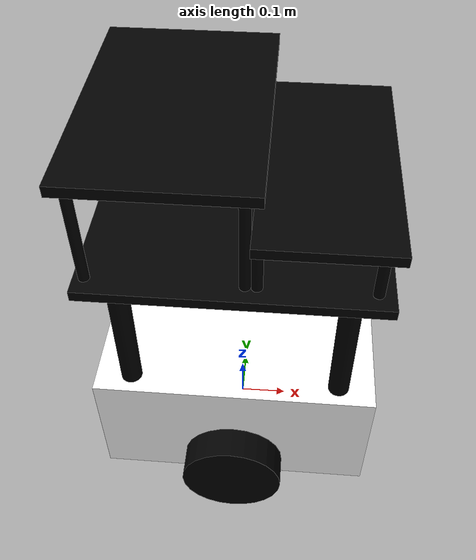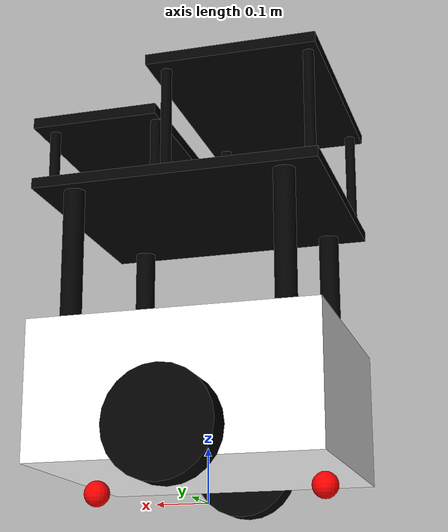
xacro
<?xml version="1.0"?>
<robot name="xiaoqiang" xmlns:xacro="http://wiki.ros.org/xacro">

    <xacro:property name="lidar_x" value="0.20"/>
    <xacro:property name="base_footprint_radius" value="0.001" />
    <xacro:property name="earth_space" value="0.05" /> <!-- 离地间距 -->
    <xacro:property name="base_size_x" value="0.54"/>
    <xacro:property name="base_size_y" value="0.48"/>
    <xacro:property name="base_size_z" value="0.26"/>
    <xacro:property name="base_mass" value="40.0"/>
    <xacro:property name="wheel_mass" value="10.0"/>
    <xacro:property name="wheel_radius" value="0.1"/>
    <xacro:property name="wheel_length" value="0.06"/>
    <!-- 定义底盘 -->
    <link name="base_footprint">
      <visual>
        <geometry>
          <sphere radius="${base_footprint_radius}" />
        </geometry>
      </visual>
    </link>
    <!-- 定义车底座 -->
    <link name="base_link">
        <!-- 外观 -->
        <visual>
            <origin xyz="0 0 0" rpy="0 0 0" />
            <geometry>
                <box size="${base_size_x} ${base_size_y} ${base_size_z}"/>
            </geometry>
            <material name="white">
                <color rgba="1 1 1 1"/>
            </material>
        </visual>
        <!-- 碰撞属性 -->
        <collision>
            <origin xyz="0 0 0" rpy="0 0 0" />
            <geometry>
                <box size="${base_size_x} ${base_size_y} ${base_size_z}"/>
            </geometry>
        </collision>
        <!-- 惯性属性 -->
        <inertial>
            <mass value="${base_mass}"/>
            <origin xyz="${base_size_x/2} 0 0" rpy="0 0 0"/>
            <inertia ixx="${base_mass*(base_size_z*base_size_z + base_size_x*base_size_x)/12}" ixy = "0" ixz = "0"
                     iyy="${base_mass*(base_size_y*base_size_y + base_size_x*base_size_x)/12}" iyz= "0"
                     izz="${base_mass*(base_size_y*base_size_y + base_size_z*base_size_z)/12}" />
        </inertial>
    </link>

    <joint name="base_to_foot_joint" type="fixed">
      <parent link="base_footprint" />
      <child link="base_link" />
      <origin xyz="0 0 ${earth_space + base_size_z / 2 }" />
    </joint>

    <link name="left_wheel_link">
        <visual>
            <origin xyz="0 0 0" rpy="-1.5707963 0 0" />
            <geometry>
                <cylinder radius="${wheel_radius}" length="${wheel_length}"/>
            </geometry>
            <material name="Black">
                <color rgba="0 0 0 1"/>
            </material>
        </visual>
        <collision>
            <origin xyz="0 0 0" rpy="-1.5707963 0 0" />
            <geometry>
                <cylinder radius="${wheel_radius}" length="${wheel_length}"/>
            </geometry>
        </collision>
        <inertial>
            <mass value="${wheel_mass}"/>
            <origin xyz="0 0 0" rpy="-1.5707963 0 0"/>
            <inertia ixx="${wheel_mass*(3*wheel_radius*wheel_radius+wheel_length*wheel_length)/12}" ixy = "0" ixz = "0"
                iyy="${wheel_mass*(3*wheel_radius*wheel_radius+wheel_length*wheel_length)/12}" iyz = "0"
                izz="${wheel_mass*wheel_radius*wheel_radius/2}" />
        </inertial>
    </link>

    <!-- 左后轮驱动 -->
    <joint name="rot1" type="continuous">
        <origin xyz="0 ${base_size_y/2 + wheel_length/2} ${ -1 * base_size_z /2 + wheel_radius/2}" rpy="0 0 0"/>
        <parent link="base_link"/>
        <child link="left_wheel_link"/>
        <axis xyz="0 1 0"/>
    </joint>

    <link name="right_wheel_link">
        <visual>
            <origin xyz="0 0 0" rpy="1.5707963 0 0" />
            <geometry>
                <cylinder radius="${wheel_radius}" length="${wheel_length}"/>
            </geometry>
            <material name="Black">
                <color rgba="0 0 0 1"/>
            </material>
        </visual>
        <collision>
            <origin xyz="0 0 0" rpy="1.5707963 0 0" />
            <geometry>
                <cylinder radius="${wheel_radius}" length="${wheel_length}"/>
            </geometry>
        </collision>
        <inertial>
            <mass value="${wheel_mass}"/>
            <origin xyz="0 0 0" rpy="1.5707963 0 0" />
            <inertia ixx="${wheel_mass*(3*wheel_radius*wheel_radius+wheel_length*wheel_length)/12}" ixy = "0" ixz = "0"
                iyy="${wheel_mass*(3*wheel_radius*wheel_radius+wheel_length*wheel_length)/12}" iyz = "0"
                izz="${wheel_mass*wheel_radius*wheel_radius/2}" />
        </inertial>
    </link>

    <!-- 右后轮驱动 -->
    <joint name="rot2" type="continuous">
        <origin xyz="0 ${-1*(base_size_y/2 + wheel_length/2)} ${ -1 * base_size_z /2 + wheel_radius/2}" rpy="0 0 0"/>
        <parent link="base_link"/>
        <child link="right_wheel_link"/>
        <axis xyz="0 1 0"/>
    </joint>

  <xacro:property name="support_wheel_radius" value="0.025" />
  <xacro:property name="support_wheel_mass" value="10.0" />
  <xacro:property name="support_wheel_x" value="0.22" />
  <link name="front_support_wheel">
    <visual>
        <origin xyz="0 0 0" rpy="0 0 0" />
        <geometry>
            <sphere radius="${support_wheel_radius}" />
        </geometry>
        <material name="Red">
            <color rgba="1 0 0 1"/>
        </material>
    </visual>
    <collision>
        <origin xyz="0 0 0" rpy="0 0 0" />
        <geometry>
            <sphere radius="${support_wheel_radius}" />
        </geometry>
    </collision>
    <inertial>
        <mass value="${support_wheel_mass}"/>
        <origin xyz="0 0 0" rpy="0 0 0" />
        <inertia ixx="${2*support_wheel_mass*support_wheel_radius*support_wheel_radius/5}" ixy="0" ixz="0"
            iyy="${2*support_wheel_mass*support_wheel_radius*support_wheel_radius/5}" iyz="0"
            izz="${2*support_wheel_mass*support_wheel_radius*support_wheel_radius/5}" />
    </inertial>
  </link>
  <joint name="rot3" type="continuous">
    <origin xyz="${support_wheel_x} 0 ${-1 * (base_size_z /2 + support_wheel_radius)}" rpy="0 0 0" />
    <parent link="base_link" />
    <child link="front_support_wheel" />
    <axis xyz="1 1 1" />
  </joint>

  <link name="back_support_wheel">
    <visual>
        <origin xyz="0 0 0" rpy="0 0 0" />
        <geometry>
            <sphere radius="${support_wheel_radius}" />
        </geometry>
        <material name="Red">
            <color rgba="1 0 0 1"/>
        </material>
    </visual>
    <collision>
        <origin xyz="0 0 0" rpy="0 0 0" />
        <geometry>
            <sphere radius="${support_wheel_radius}" />
        </geometry>
    </collision>
    <inertial>
        <mass value="${support_wheel_mass}"/>
        <origin xyz="0 0 0" rpy="0 0 0" />
        <inertia ixx="${2*support_wheel_mass*support_wheel_radius*support_wheel_radius/5}" ixy="0" ixz="0"
            iyy="${2*support_wheel_mass*support_wheel_radius*support_wheel_radius/5}" iyz="0"
            izz="${2*support_wheel_mass*support_wheel_radius*support_wheel_radius/5}" />
    </inertial>
  </link>
  <joint name="rot4" type="continuous">
    <origin xyz="${-support_wheel_x} 0 ${-1 * (base_size_z /2 + support_wheel_radius)}" rpy="0 0 0" />
    <parent link="base_link" />
    <child link="back_support_wheel" />
    <axis xyz="1 1 1" />
  </joint>

  <xacro:property name="column_radius" value="0.02"/>
  <xacro:property name="column_length" value="0.25"/>
  <xacro:property name="column_mass" value="3.0"/>
  <xacro:property name="column_x" value="0.20"/>
  <xacro:property name="column_y" value="0.05"/>
  <link name="column_one">
      <visual>
          <geometry>
              <cylinder radius="${column_radius}" length="${column_length}" />
          </geometry>
          <origin xyz="0 0 0" rpy="0 0 0" />
          <material name="black">
              <color rgba="0 0 0 1.0" />
          </material>
      </visual>
      <collision>
          <geometry>
              <cylinder radius="${column_radius}" length="${column_length}" />
          </geometry>
          <origin xyz="0.0 0.0 0.0" rpy="0 0.0 0.0" />
      </collision>
      <inertial>
          <origin xyz="0 0 0" />
          <mass value="${column_mass}" />
          <inertia ixx="${column_mass*(3*column_radius*column_radius+column_length*column_length)/12}" ixy = "0" ixz = "0"
              iyy="${column_mass*(3*column_radius*column_radius+column_length*column_length)/12}" iyz = "0"
              izz="${column_mass*column_radius*column_radius/2}" />
      </inertial>
  </link>

  <joint name="column_one_joint" type="fixed">
    <parent link="base_link"/>
    <child link="column_one"/>
    <origin rpy="0 0 0" xyz="${column_x} ${base_size_y/2 + column_radius/2 - column_y} ${column_length / 2 + base_size_z / 2} "/>
  </joint>

  <link name="column_two">
      <visual>
          <geometry>
              <cylinder radius="${column_radius}" length="${column_length}" />
          </geometry>
          <origin xyz="0 0 0" rpy="0 0 0" />
          <material name="black">
              <color rgba="0 0 0 1.0" />
          </material>
      </visual>
      <collision>
          <geometry>
              <cylinder radius="${column_radius}" length="${column_length}" />
          </geometry>
          <origin xyz="0.0 0.0 0.0" rpy="0 0.0 0.0" />
      </collision>
      <inertial>
          <origin xyz="0 0 0" />
          <mass value="${column_mass}" />
          <inertia ixx="${column_mass*(3*column_radius*column_radius+column_length*column_length)/12}" ixy = "0" ixz = "0"
              iyy="${column_mass*(3*column_radius*column_radius+column_length*column_length)/12}" iyz = "0"
              izz="${column_mass*column_radius*column_radius/2}" />
      </inertial>
  </link>

  <joint name="column_two_joint" type="fixed">
    <parent link="base_link"/>
    <child link="column_two"/>
    <origin rpy="0 0 0" xyz="${column_x} ${-1 *base_size_y/2 - column_radius/2 + column_y} ${column_length / 2 + base_size_z / 2} "/>
  </joint>

  <link name="column_three">
      <visual>
          <geometry>
              <cylinder radius="${column_radius}" length="${column_length}" />
          </geometry>
          <origin xyz="0 0 0" rpy="0 0 0" />
          <material name="black">
              <color rgba="0 0 0 1.0" />
          </material>
      </visual>
      <collision>
          <geometry>
              <cylinder radius="${column_radius}" length="${column_length}" />
          </geometry>
          <origin xyz="0.0 0.0 0.0" rpy="0 0.0 0.0" />
      </collision>
      <inertial>
          <origin xyz="0 0 0" />
          <mass value="${column_mass}" />
          <inertia ixx="${column_mass*(3*column_radius*column_radius+column_length*column_length)/12}" ixy = "0" ixz = "0"
              iyy="${column_mass*(3*column_radius*column_radius+column_length*column_length)/12}" iyz = "0"
              izz="${column_mass*column_radius*column_radius/2}" />
      </inertial>
  </link>

  <joint name="column_three_joint" type="fixed">
    <parent link="base_link"/>
    <child link="column_three"/>
    <origin rpy="0 0 0" xyz="${-1 *column_x} ${-1 *base_size_y/2 - column_radius/2 + column_y} ${column_length / 2 + base_size_z / 2} "/>
  </joint>

  <link name="column_four">
      <visual>
          <geometry>
              <cylinder radius="${column_radius}" length="${column_length}" />
          </geometry>
          <origin xyz="0 0 0" rpy="0 0 0" />
          <material name="black">
              <color rgba="0 0 0 1.0" />
          </material>
      </visual>
      <collision>
          <geometry>
              <cylinder radius="${column_radius}" length="${column_length}" />
          </geometry>
          <origin xyz="0.0 0.0 0.0" rpy="0 0.0 0.0" />
      </collision>
      <inertial>
          <origin xyz="0 0 0" />
          <mass value="${column_mass}" />
          <inertia ixx="${column_mass*(3*column_radius*column_radius+column_length*column_length)/12}" ixy = "0" ixz = "0"
              iyy="${column_mass*(3*column_radius*column_radius+column_length*column_length)/12}" iyz = "0"
              izz="${column_mass*column_radius*column_radius/2}" />
      </inertial>
  </link>

  <joint name="column_four_joint" type="fixed">
    <parent link="base_link"/>
    <child link="column_four"/>
    <origin rpy="0 0 0" xyz="${-1 *column_x} ${base_size_y/2 + column_radius/2 - column_y} ${column_length / 2 + base_size_z / 2} "/>
  </joint>

  <xacro:property name="base_size_two_z" value="0.02"/>
  <xacro:property name="base_1_mass" value="2.0"/>
      <!-- 定义车二层 -->
  <link name="two_ply_link">
      <!-- 外观 -->
      <visual>
          <origin xyz="0 0 0" rpy="0 0 0" />
          <geometry>
              <box size="${base_size_x} ${base_size_y} ${base_size_two_z}"/>
          </geometry>
          <material name="black">
              <color rgba="0 0 0 1"/>
          </material>
      </visual>
      <!-- 碰撞属性 -->
      <collision>
          <origin xyz="0 0 0" rpy="0 0 0" />
          <geometry>
              <box size="${base_size_x} ${base_size_y} ${base_size_two_z}"/>
          </geometry>
      </collision>
      <!-- 惯性属性 -->
      <inertial>
          <mass value="${base_1_mass}"/>
          <origin xyz="0 0 0" rpy="0 0 0" />
          <inertia ixx="${base_1_mass*(base_size_two_z*base_size_two_z + base_size_x*base_size_x)/12}" ixy = "0" ixz = "0"
                    iyy="${base_1_mass*(base_size_y*base_size_y + base_size_x*base_size_x)/12}" iyz= "0"
                    izz="${base_1_mass*(base_size_y*base_size_y + base_size_two_z*base_size_two_z)/12}" />
      </inertial>
  </link>

  <joint name="two_ply_joint" type="fixed">
    <parent link="base_link"/>
    <child link="two_ply_link"/>
    <origin rpy="0 0 0" xyz="0 0 ${ column_length  + base_size_two_z / 2 + base_size_z / 2} "/>
  </joint>

  <xacro:property name="column2_radius" value="0.01"/>
  <xacro:property name="column2_length" value="0.20"/>
  <xacro:property name="column2_mass" value="1.0"/>
  <xacro:property name="column2_x1" value="0.25"/>
  <xacro:property name="column2_x2" value="0.02"/>
  <xacro:property name="column2_y" value="0.04"/>

  <link name="column2_one">
      <visual>
          <geometry>
              <cylinder radius="${column2_radius}" length="${column2_length}" />
          </geometry>
          <origin xyz="0 0 0" rpy="0 0 0" />
          <material name="black">
              <color rgba="0 0 0 1" />
          </material>
      </visual>
      <collision>
          <geometry>
              <cylinder radius="${column2_radius}" length="${column2_length}" />
          </geometry>
          <origin xyz="0.0 0.0 0.0" rpy="0 0.0 0.0" />
      </collision>
      <inertial>
          <origin xyz="0 0 0" />
          <mass value="${column2_mass}" />
          <inertia ixx="${column2_mass*(3*column2_radius*column2_radius+column2_length*column2_length)/12}" ixy = "0" ixz = "0"
              iyy="${column2_mass*(3*column2_radius*column2_radius+column2_length*column2_length)/12}" iyz = "0"
              izz="${column2_mass*column2_radius*column2_radius/2}" />
      </inertial>
  </link>

  <joint name="column2_one_joint" type="fixed">
    <parent link="two_ply_link"/>
    <child link="column2_one"/>
    <origin rpy="0 0 0" xyz="${-1 *column2_x1} ${base_size_y/2 + column2_radius/2 - column2_y} ${column2_length / 2 + base_size_two_z / 2} "/>
  </joint>

  <link name="column2_two">
      <visual>
          <geometry>
              <cylinder radius="${column2_radius}" length="${column2_length}" />
          </geometry>
          <origin xyz="0 0 0" rpy="0 0 0" />
          <material name="black">
              <color rgba="0 0 0 1" />
          </material>
      </visual>
      <collision>
          <geometry>
              <cylinder radius="${column2_radius}" length="${column2_length}" />
          </geometry>
          <origin xyz="0.0 0.0 0.0" rpy="0 0.0 0.0" />
      </collision>
      <inertial>
          <origin xyz="0 0 0" />
          <mass value="${column2_mass}" />
          <inertia ixx="${column2_mass*(3*column2_radius*column2_radius+column2_length*column2_length)/12}" ixy = "0" ixz = "0"
              iyy="${column2_mass*(3*column2_radius*column2_radius+column2_length*column2_length)/12}" iyz = "0"
              izz="${column2_mass*column2_radius*column2_radius/2}" />
      </inertial>
  </link>

  <joint name="column2_two_joint" type="fixed">
    <parent link="two_ply_link"/>
    <child link="column2_two"/>
    <origin rpy="0 0 0" xyz="${-1 *column2_x1} ${ -1 * base_size_y/2 - column2_radius/2 + column2_y} ${column2_length / 2 + base_size_two_z / 2} "/>
  </joint>

  <link name="column2_three">
      <visual>
          <geometry>
              <cylinder radius="${column2_radius}" length="${column2_length}" />
          </geometry>
          <origin xyz="0 0 0" rpy="0 0 0" />
          <material name="black">
              <color rgba="0 0 0 1" />
          </material>
      </visual>
      <collision>
          <geometry>
              <cylinder radius="${column2_radius}" length="${column2_length}" />
          </geometry>
          <origin xyz="0.0 0.0 0.0" rpy="0 0.0 0.0" />
      </collision>
      <inertial>
          <origin xyz="0 0 0" />
          <mass value="${column2_mass}" />
          <inertia ixx="${column2_mass*(3*column2_radius*column2_radius+column2_length*column2_length)/12}" ixy = "0" ixz = "0"
              iyy="${column2_mass*(3*column2_radius*column2_radius+column2_length*column2_length)/12}" iyz = "0"
              izz="${column2_mass*column2_radius*column2_radius/2}" />
      </inertial>
  </link>

  <joint name="column2_three_joint" type="fixed">
    <parent link="two_ply_link"/>
    <child link="column2_three"/>
    <origin rpy="0 0 0" xyz="${column2_x2} ${base_size_y/2 + column2_radius/2 - column2_y} ${column2_length / 2 + base_size_two_z / 2} "/>
  </joint>

  <link name="column2_four">
      <visual>
          <geometry>
              <cylinder radius="${column2_radius}" length="${column2_length}" />
          </geometry>
          <origin xyz="0 0 0" rpy="0 0 0" />
          <material name="black">
              <color rgba="0 0 0 1" />
          </material>
      </visual>
      <collision>
          <geometry>
              <cylinder radius="${column2_radius}" length="${column2_length}" />
          </geometry>
          <origin xyz="0.0 0.0 0.0" rpy="0 0.0 0.0" />
      </collision>
      <inertial>
          <origin xyz="0 0 0" />
          <mass value="${column2_mass}" />
          <inertia ixx="${column2_mass*(3*column2_radius*column2_radius+column2_length*column2_length)/12}" ixy = "0" ixz = "0"
              iyy="${column2_mass*(3*column2_radius*column2_radius+column2_length*column2_length)/12}" iyz = "0"
              izz="${column2_mass*column2_radius*column2_radius/2}" />
      </inertial>
  </link>

  <joint name="column2_four_joint" type="fixed">
    <parent link="two_ply_link"/>
    <child link="column2_four"/>
    <origin rpy="0 0 0" xyz="${column2_x2} ${-1 *base_size_y/2 - column2_radius/2 + column2_y} ${column2_length / 2 + base_size_two_z / 2} "/>
  </joint>

  <xacro:property name="base_size_three_x" value="0.32"/>

  <!-- 定义车三层 -->
  <link name="three_ply_link">
      <!-- 外观 -->
      <visual>
          <origin xyz="0 0 0" rpy="0 0 0" />
          <geometry>
              <box size="${base_size_three_x} ${base_size_y} ${base_size_two_z}"/>
          </geometry>
          <material name="black">
              <color rgba="0 0 0 1"/>
          </material>
      </visual>
      <!-- 碰撞属性 -->
      <collision>
          <origin xyz="0 0 0" rpy="0 0 0" />
          <geometry>
              <box size="${base_size_three_x} ${base_size_y} ${base_size_two_z}"/>
          </geometry>
      </collision>
      <!-- 惯性属性 -->
      <inertial>
          <mass value="${base_1_mass}"/>
          <origin xyz="0 0 0" rpy="0 0 0" />
          <inertia ixx="${base_1_mass*(base_size_two_z*base_size_two_z + base_size_three_x*base_size_three_x)/12}" ixy = "0" ixz = "0"
                    iyy="${base_1_mass*(base_size_y*base_size_y + base_size_three_x*base_size_three_x)/12}" iyz= "0"
                    izz="${base_1_mass*(base_size_y*base_size_y + base_size_two_z*base_size_two_z)/12}" />
      </inertial>
  </link>

  <joint name="three_ply_joint" type="fixed">
    <parent link="two_ply_link"/>
    <child link="three_ply_link"/>
    <origin rpy="0 0 0" xyz="${base_size_three_x /2 - base_size_x /2} 0 ${ column2_length  + base_size_two_z } "/>
  </joint>

  <xacro:property name="column3_length" value="0.10"/>
  <xacro:property name="column3_x1" value="0.04"/>
  <xacro:property name="column3_x2" value="0.24"/>
  <xacro:property name="column3_y" value="0.04"/>

  <link name="column3_one">
      <visual>
          <geometry>
              <cylinder radius="${column2_radius}" length="${column3_length}" />
          </geometry>
          <origin xyz="0 0 0" rpy="0 0 0" />
          <material name="black">
              <color rgba="0 0 0 1" />
          </material>
      </visual>
      <collision>
          <geometry>
              <cylinder radius="${column2_radius}" length="${column3_length}" />
          </geometry>
          <origin xyz="0.0 0.0 0.0" rpy="0 0.0 0.0" />
      </collision>
      <inertial>
          <origin xyz="0 0 0" />
          <mass value="${column2_mass}" />
          <inertia ixx="${column2_mass*(3*column2_radius*column2_radius+column3_length*column3_length)/12}" ixy = "0" ixz = "0"
              iyy="${column2_mass*(3*column2_radius*column2_radius+column3_length*column3_length)/12}" iyz = "0"
              izz="${column2_mass*column2_radius*column2_radius/2}" />
      </inertial>
  </link>

  <joint name="column3_one_joint" type="fixed">
    <parent link="two_ply_link"/>
    <child link="column3_one"/>
    <origin rpy="0 0 0" xyz="${column3_x1} ${ base_size_y/2 + column2_radius/2 - column3_y} ${column3_length / 2 + base_size_two_z / 2} "/>
  </joint>

  <link name="column3_two">
      <visual>
          <geometry>
              <cylinder radius="${column2_radius}" length="${column3_length}" />
          </geometry>
          <origin xyz="0 0 0" rpy="0 0 0" />
          <material name="black">
              <color rgba="0 0 0 1" />
          </material>
      </visual>
      <collision>
          <geometry>
              <cylinder radius="${column2_radius}" length="${column3_length}" />
          </geometry>
          <origin xyz="0.0 0.0 0.0" rpy="0 0.0 0.0" />
      </collision>
      <inertial>
          <origin xyz="0 0 0" />
          <mass value="${column2_mass}" />
          <inertia ixx="${column2_mass*(3*column2_radius*column2_radius+column3_length*column3_length)/12}" ixy = "0" ixz = "0"
              iyy="${column2_mass*(3*column2_radius*column2_radius+column3_length*column3_length)/12}" iyz = "0"
              izz="${column2_mass*column2_radius*column2_radius/2}" />
      </inertial>
  </link>

  <joint name="column3_two_joint" type="fixed">
    <parent link="two_ply_link"/>
    <child link="column3_two"/>
    <origin rpy="0 0 0" xyz="${column3_x1} ${ -1 * base_size_y/2 - column2_radius/2 + column3_y} ${column3_length / 2 + base_size_two_z / 2} "/>
  </joint>

  <link name="column3_three">
      <visual>
          <geometry>
              <cylinder radius="${column2_radius}" length="${column3_length}" />
          </geometry>
          <origin xyz="0 0 0" rpy="0 0 0" />
          <material name="black">
              <color rgba="0 0 0 1" />
          </material>
      </visual>
      <collision>
          <geometry>
              <cylinder radius="${column2_radius}" length="${column3_length}" />
          </geometry>
          <origin xyz="0.0 0.0 0.0" rpy="0 0.0 0.0" />
      </collision>
      <inertial>
          <origin xyz="0 0 0" />
          <mass value="${column2_mass}" />
          <inertia ixx="${column2_mass*(3*column2_radius*column2_radius+column3_length*column3_length)/12}" ixy = "0" ixz = "0"
              iyy="${column2_mass*(3*column2_radius*column2_radius+column3_length*column3_length)/12}" iyz = "0"
              izz="${column2_mass*column2_radius*column2_radius/2}" />
      </inertial>
  </link>

  <joint name="column3_three_joint" type="fixed">
    <parent link="two_ply_link"/>
    <child link="column3_three"/>
    <origin rpy="0 0 0" xyz="${column3_x2} ${ base_size_y/2 + column2_radius/2 - column3_y} ${column3_length / 2 + base_size_two_z / 2} "/>
  </joint>

  <link name="column3_four">
      <visual>
          <geometry>
              <cylinder radius="${column2_radius}" length="${column3_length}" />
          </geometry>
          <origin xyz="0 0 0" rpy="0 0 0" />
          <material name="black">
              <color rgba="0 0 0 1" />
          </material>
      </visual>
      <collision>
          <geometry>
              <cylinder radius="${column2_radius}" length="${column3_length}" />
          </geometry>
          <origin xyz="0.0 0.0 0.0" rpy="0 0.0 0.0" />
      </collision>
      <inertial>
          <origin xyz="0 0 0" />
          <mass value="${column2_mass}" />
          <inertia ixx="${column2_mass*(3*column2_radius*column2_radius+column3_length*column3_length)/12}" ixy = "0" ixz = "0"
              iyy="${column2_mass*(3*column2_radius*column2_radius+column3_length*column3_length)/12}" iyz = "0"
              izz="${column2_mass*column2_radius*column2_radius/2}" />
      </inertial>
  </link>

  <joint name="column3_four_joint" type="fixed">
    <parent link="two_ply_link"/>
    <child link="column3_four"/>
    <origin rpy="0 0 0" xyz="${column3_x2} ${ -1 * base_size_y/2 - column2_radius/2 + column3_y} ${column3_length / 2 + base_size_two_z / 2} "/>
  </joint>

  <xacro:property name="base_size_jxb_x" value="0.24"/>
  <!-- 定义车三2层 -->
  <link name="three_jxb_link">
      <!-- 外观 -->
      <visual>
          <origin xyz="0 0 0" rpy="0 0 0" />
          <geometry>
              <box size="${base_size_jxb_x} ${base_size_y} ${base_size_two_z}"/>
          </geometry>
          <material name="black">
              <color rgba="0 0 0 1"/>
          </material>
      </visual>
      <!-- 碰撞属性 -->
      <collision>
          <origin xyz="0 0 0" rpy="0 0 0" />
          <geometry>
              <box size="${base_size_jxb_x} ${base_size_y} ${base_size_two_z}"/>
          </geometry>
      </collision>
      <!-- 惯性属性 -->
      <inertial>
          <mass value="${base_1_mass}"/>
          <origin xyz="${base_size_jxb_x/2} 0 0" rpy="0 0 0"/>
          <inertia ixx="${base_1_mass*(base_size_two_z*base_size_two_z + base_size_jxb_x*base_size_jxb_x)/12}" ixy = "0" ixz = "0"
                    iyy="${base_1_mass*(base_size_y*base_size_y + base_size_jxb_x*base_size_jxb_x)/12}" iyz= "0"
                    izz="${base_1_mass*(base_size_y*base_size_y + base_size_two_z*base_size_two_z)/12}" />
      </inertial>
  </link>
  <joint name="three_jxb_joint" type="fixed">
    <parent link="two_ply_link"/>
    <child link="three_jxb_link"/>
    <origin rpy="0 0 0" xyz="${base_size_x /2 - base_size_jxb_x /2 } 0 ${ column3_length  + base_size_two_z } "/>
  </joint>

</robot>
